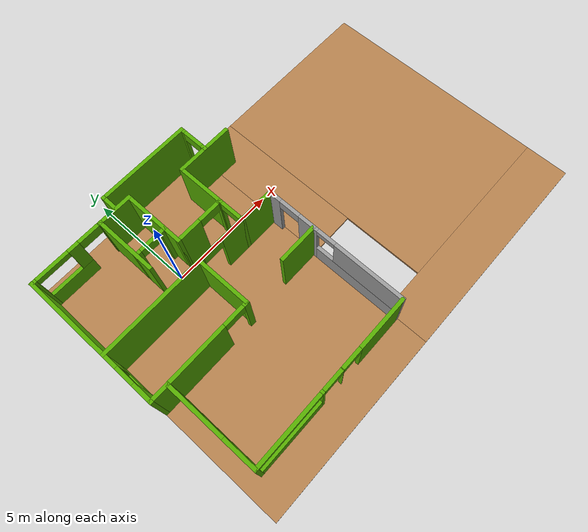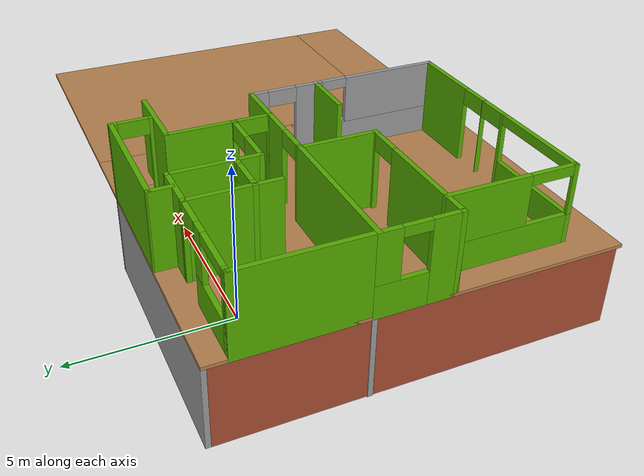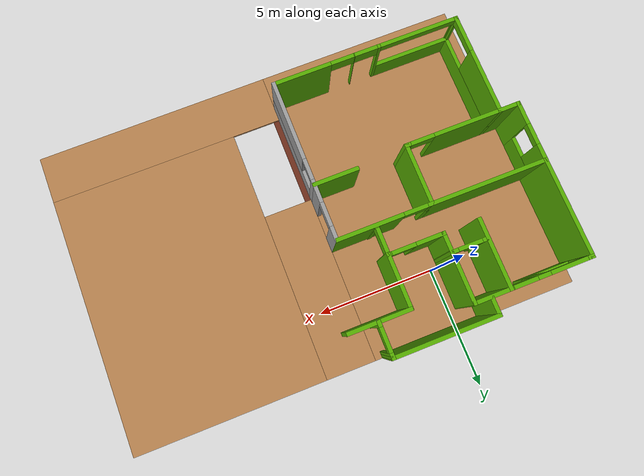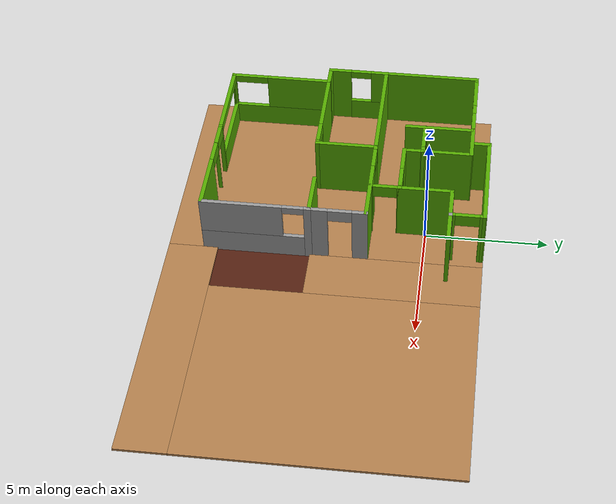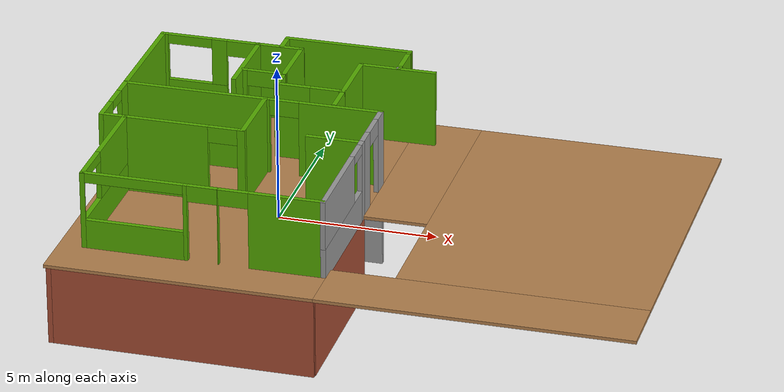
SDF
<sdf version="1.6">
 <model name="2floorHouse">
  <pose>4.58179 -3.588 0 0 -0 0</pose>
  <link name="Floor_7">
   <pose>-0.064 0 2.5 0 -0 0</pose>
   <visual name="Floor_7_Visual_0">
    <pose>-4.67984 0 0.05 0 -0 0</pose>
    <geometry><box><size>8.04273 11.89 0.1</size></box></geometry>
    <material>
     <script><uri>file://media/materials/scripts/gazebo.material</uri><name>Gazebo/Wood</name></script>
     <ambient>0 0 1 1</ambient>
    </material>
   </visual>
   <collision name="Floor_7_Collision_0">
    <geometry><box><size>8.04273 11.89 0.1</size></box></geometry>
    <pose>-4.67984 0 0.05 0 -0 0</pose>
   </collision>
   <visual name="Floor_7_Visual_1">
    <pose>4.02136 -5.01144 0.05 0 -0 0</pose>
    <geometry><box><size>9.35968 1.86713 0.1</size></box></geometry>
    <material>
     <script><uri>file://media/materials/scripts/gazebo.material</uri><name>Gazebo/Wood</name></script>
     <ambient>0 0 1 1</ambient>
    </material>
   </visual>
   <collision name="Floor_7_Collision_1">
    <geometry><box><size>9.35968 1.86713 0.1</size></box></geometry>
    <pose>4.02136 -5.01144 0.05 0 -0 0</pose>
   </collision>
   <visual name="Floor_7_Visual_2">
    <pose>4.98424 0.933567 0.05 0 -0 0</pose>
    <geometry><box><size>7.43393 10.0229 0.1</size></box></geometry>
    <material>
     <script><uri>file://media/materials/scripts/gazebo.material</uri><name>Gazebo/Wood</name></script>
     <ambient>0 0 1 1</ambient>
    </material>
   </visual>
   <collision name="Floor_7_Collision_2">
    <geometry><box><size>7.43393 10.0229 0.1</size></box></geometry>
    <pose>4.98424 0.933567 0.05 0 -0 0</pose>
   </collision>
   <visual name="Floor_7_Visual_3">
    <pose>0.304399 2.68357 0.05 0 -0 0</pose>
    <geometry><box><size>1.92575 6.52287 0.1</size></box></geometry>
    <material>
     <script><uri>file://media/materials/scripts/gazebo.material</uri><name>Gazebo/Wood</name></script>
     <ambient>0 0 1 1</ambient>
    </material>
   </visual>
   <collision name="Floor_7_Collision_3">
    <geometry><box><size>1.92575 6.52287 0.1</size></box></geometry>
    <pose>0.304399 2.68357 0.05 0 -0 0</pose>
   </collision>
  </link>
  <link name="Wall_106">
   <collision name="Wall_106_Collision">
    <geometry><box><size>2.4 0.15 2.5</size></box></geometry>
    <pose>0 0 1.25 0 -0 0</pose>
   </collision>
   <visual name="Wall_106_Visual">
    <pose>0 0 1.25 0 -0 0</pose>
    <geometry><box><size>2.4 0.15 2.5</size></box></geometry>
    <material>
     <script><uri>file://media/materials/scripts/gazebo.material</uri><name>Gazebo/Grey</name></script>
     <ambient>1 1 1 1</ambient>
    </material>
   </visual>
   <pose>-1.1018 4.61 0 0 -0 3.14159</pose>
  </link>
  <link name="Wall_108">
   <collision name="Wall_108_Collision">
    <geometry><box><size>2.1 0.15 2.5</size></box></geometry>
    <pose>0 0 1.25 0 -0 0</pose>
   </collision>
   <visual name="Wall_108_Visual">
    <pose>0 0 1.25 0 -0 0</pose>
    <geometry><box><size>2.1 0.15 2.5</size></box></geometry>
    <material>
     <script><uri>file://media/materials/scripts/gazebo.material</uri><name>Gazebo/Grey</name></script>
     <ambient>1 1 1 1</ambient>
    </material>
   </visual>
   <pose>-2.23979 3.635 0 0 -0 1.5708</pose>
  </link>
  <link name="Wall_112">
   <collision name="Wall_112_Collision">
    <geometry><box><size>4 0.15 2.5</size></box></geometry>
    <pose>0 0 1.25 0 -0 0</pose>
   </collision>
   <visual name="Wall_112_Visual">
    <pose>0 0 1.25 0 -0 0</pose>
    <geometry><box><size>4 0.15 2.5</size></box></geometry>
    <material>
     <script><uri>file://media/materials/scripts/gazebo.material</uri><name>Gazebo/Grey</name></script>
     <ambient>1 1 1 1</ambient>
    </material>
   </visual>
   <pose>-2.98475 5.8698 0 0 0 -3.14149</pose>
  </link>
  <link name="Wall_115">
   <collision name="Wall_115_Collision">
    <geometry><box><size>1.4 0.15 2.5</size></box></geometry>
    <pose>0 0 1.25 0 -0 0</pose>
   </collision>
   <visual name="Wall_115_Visual">
    <pose>0 0 1.25 0 -0 0</pose>
    <geometry><box><size>1.4 0.15 2.5</size></box></geometry>
    <material>
     <script><uri>file://media/materials/scripts/gazebo.material</uri><name>Gazebo/Grey</name></script>
     <ambient>1 1 1 1</ambient>
    </material>
   </visual>
   <pose>-1.0598 5.245 0 0 0 -1.5708</pose>
  </link>
  <link name="Wall_116">
   <collision name="Wall_116_Collision">
    <geometry><box><size>0.15 0.15 2.5</size></box></geometry>
    <pose>0 0 1.25 0 -0 0</pose>
   </collision>
   <visual name="Wall_116_Visual">
    <pose>0 0 1.25 0 -0 0</pose>
    <geometry><box><size>0.15 0.15 2.5</size></box></geometry>
    <material>
     <script><uri>file://media/materials/scripts/gazebo.material</uri><name>Gazebo/Grey</name></script>
     <ambient>1 1 1 1</ambient>
    </material>
   </visual>
   <pose>-1.0598 4.62 0 0 -0 0</pose>
  </link>
  <link name="Wall_292">
   <pose>-4.3959 -4.53994 2.5 0 0 -3.14158</pose>
   <visual name="Wall_292_Visual_0">
    <pose>-2.52118 0 1.25 0 -0 0</pose>
    <geometry><box><size>2.25743 0.15 2.5</size></box></geometry>
    <material>
     <script><uri>file://media/materials/scripts/gazebo.material</uri><name>Gazebo/Grey</name></script>
     <ambient>0.333333 0.666667 0 1</ambient>
    </material>
   </visual>
   <collision name="Wall_292_Collision_0">
    <geometry><box><size>2.25743 0.15 2.5</size></box></geometry>
    <pose>-2.52118 0 1.25 0 -0 0</pose>
   </collision>
   <visual name="Wall_292_Visual_1">
    <pose>-0.479853 0 1.25 0 -0 0</pose>
    <geometry><box><size>0.025221 0.15 2.5</size></box></geometry>
    <material>
     <script><uri>file://media/materials/scripts/gazebo.material</uri><name>Gazebo/Grey</name></script>
     <ambient>0.333333 0.666667 0 1</ambient>
    </material>
   </visual>
   <collision name="Wall_292_Collision_1">
    <geometry><box><size>0.025221 0.15 2.5</size></box></geometry>
    <pose>-0.479853 0 1.25 0 -0 0</pose>
   </collision>
   <visual name="Wall_292_Visual_2">
    <pose>0.492301 0 1.25 0 -0 0</pose>
    <geometry><box><size>0.119086 0.15 2.5</size></box></geometry>
    <material>
     <script><uri>file://media/materials/scripts/gazebo.material</uri><name>Gazebo/Grey</name></script>
     <ambient>0.333333 0.666667 0 1</ambient>
    </material>
   </visual>
   <collision name="Wall_292_Collision_2">
    <geometry><box><size>0.119086 0.15 2.5</size></box></geometry>
    <pose>0.492301 0 1.25 0 -0 0</pose>
   </collision>
   <visual name="Wall_292_Visual_3">
    <pose>2.10087 0 0.5 0 -0 0</pose>
    <geometry><box><size>3.09805 0.15 1</size></box></geometry>
    <material>
     <script><uri>file://media/materials/scripts/gazebo.material</uri><name>Gazebo/Grey</name></script>
     <ambient>0.333333 0.666667 0 1</ambient>
    </material>
   </visual>
   <collision name="Wall_292_Collision_3">
    <geometry><box><size>3.09805 0.15 1</size></box></geometry>
    <pose>2.10087 0 0.5 0 -0 0</pose>
   </collision>
   <visual name="Wall_292_Visual_4">
    <pose>3.60087 0 1.75 0 -0 0</pose>
    <geometry><box><size>0.098047 0.15 1.5</size></box></geometry>
    <material>
     <script><uri>file://media/materials/scripts/gazebo.material</uri><name>Gazebo/Grey</name></script>
     <ambient>0.333333 0.666667 0 1</ambient>
    </material>
   </visual>
   <collision name="Wall_292_Collision_4">
    <geometry><box><size>0.098047 0.15 1.5</size></box></geometry>
    <pose>3.60087 0 1.75 0 -0 0</pose>
   </collision>
   <visual name="Wall_292_Visual_5">
    <pose>-0.942463 0 2.25 0 -0 0</pose>
    <geometry><box><size>0.9 0.15 0.5</size></box></geometry>
    <material>
     <script><uri>file://media/materials/scripts/gazebo.material</uri><name>Gazebo/Grey</name></script>
     <ambient>0.333333 0.666667 0 1</ambient>
    </material>
   </visual>
   <collision name="Wall_292_Collision_5">
    <geometry><box><size>0.9 0.15 0.5</size></box></geometry>
    <pose>-0.942463 0 2.25 0 -0 0</pose>
   </collision>
   <visual name="Wall_292_Visual_6">
    <pose>-0.017242 0 2.25 0 -0 0</pose>
    <geometry><box><size>0.9 0.15 0.5</size></box></geometry>
    <material>
     <script><uri>file://media/materials/scripts/gazebo.material</uri><name>Gazebo/Grey</name></script>
     <ambient>0.333333 0.666667 0 1</ambient>
    </material>
   </visual>
   <collision name="Wall_292_Collision_6">
    <geometry><box><size>0.9 0.15 0.5</size></box></geometry>
    <pose>-0.017242 0 2.25 0 -0 0</pose>
   </collision>
   <visual name="Wall_292_Visual_7">
    <pose>2.05184 0 2.35 0 -0 0</pose>
    <geometry><box><size>3 0.15 0.3</size></box></geometry>
    <material>
     <script><uri>file://media/materials/scripts/gazebo.material</uri><name>Gazebo/Grey</name></script>
     <ambient>0.333333 0.666667 0 1</ambient>
    </material>
   </visual>
   <collision name="Wall_292_Collision_7">
    <geometry><box><size>3 0.15 0.3</size></box></geometry>
    <pose>2.05184 0 2.35 0 -0 0</pose>
   </collision>
  </link>
  <link name="Wall_293">
   <pose>-7.97079 -2.615 2.5 0 -0 1.5708</pose>
   <visual name="Wall_293_Visual_0">
    <pose>-1.97712 0 1.25 0 -0 0</pose>
    <geometry><box><size>0.045764 0.15 2.5</size></box></geometry>
    <material>
     <script><uri>file://media/materials/scripts/gazebo.material</uri><name>Gazebo/Grey</name></script>
     <ambient>0.333333 0.666667 0 1</ambient>
    </material>
   </visual>
   <collision name="Wall_293_Collision_0">
    <geometry><box><size>0.045764 0.15 2.5</size></box></geometry>
    <pose>-1.97712 0 1.25 0 -0 0</pose>
   </collision>
   <visual name="Wall_293_Visual_1">
    <pose>0.022882 0 0.5 0 -0 0</pose>
    <geometry><box><size>3.95424 0.15 1</size></box></geometry>
    <material>
     <script><uri>file://media/materials/scripts/gazebo.material</uri><name>Gazebo/Grey</name></script>
     <ambient>0.333333 0.666667 0 1</ambient>
    </material>
   </visual>
   <collision name="Wall_293_Collision_1">
    <geometry><box><size>3.95424 0.15 1</size></box></geometry>
    <pose>0.022882 0 0.5 0 -0 0</pose>
   </collision>
   <visual name="Wall_293_Visual_2">
    <pose>0.722882 0 1.75 0 -0 0</pose>
    <geometry><box><size>2.55424 0.15 1.5</size></box></geometry>
    <material>
     <script><uri>file://media/materials/scripts/gazebo.material</uri><name>Gazebo/Grey</name></script>
     <ambient>0.333333 0.666667 0 1</ambient>
    </material>
   </visual>
   <collision name="Wall_293_Collision_2">
    <geometry><box><size>2.55424 0.15 1.5</size></box></geometry>
    <pose>0.722882 0 1.75 0 -0 0</pose>
   </collision>
   <visual name="Wall_293_Visual_3">
    <pose>-1.25424 0 2.35 0 -0 0</pose>
    <geometry><box><size>1.4 0.15 0.3</size></box></geometry>
    <material>
     <script><uri>file://media/materials/scripts/gazebo.material</uri><name>Gazebo/Grey</name></script>
     <ambient>0.333333 0.666667 0 1</ambient>
    </material>
   </visual>
   <collision name="Wall_293_Collision_3">
    <geometry><box><size>1.4 0.15 0.3</size></box></geometry>
    <pose>-1.25424 0 2.35 0 -0 0</pose>
   </collision>
  </link>
  <link name="Wall_294">
   <collision name="Wall_294_Collision">
    <geometry><box><size>0.86941 0.15 2.5</size></box></geometry>
    <pose>0 0 1.25 0 -0 0</pose>
   </collision>
   <visual name="Wall_294_Visual">
    <pose>0 0 1.25 0 -0 0</pose>
    <geometry><box><size>0.86941 0.15 2.5</size></box></geometry>
    <material>
     <script><uri>file://media/materials/scripts/gazebo.material</uri><name>Gazebo/Grey</name></script>
     <ambient>0.333333 0.666667 0 1</ambient>
    </material>
   </visual>
   <pose>-8.3305 -0.690004 2.5 0 -0 3.14159</pose>
  </link>
  <link name="Wall_295">
   <pose>-8.69021 0.434996 2.5 0 -0 1.5708</pose>
   <visual name="Wall_295_Visual_0">
    <pose>-0.748437 0 1.25 0 -0 0</pose>
    <geometry><box><size>0.903127 0.15 2.5</size></box></geometry>
    <material>
     <script><uri>file://media/materials/scripts/gazebo.material</uri><name>Gazebo/Grey</name></script>
     <ambient>0.333333 0.666667 0 1</ambient>
    </material>
   </visual>
   <collision name="Wall_295_Collision_0">
    <geometry><box><size>0.903127 0.15 2.5</size></box></geometry>
    <pose>-0.748437 0 1.25 0 -0 0</pose>
   </collision>
   <visual name="Wall_295_Visual_1">
    <pose>0.451563 0 0.5 0 -0 0</pose>
    <geometry><box><size>1.49687 0.15 1</size></box></geometry>
    <material>
     <script><uri>file://media/materials/scripts/gazebo.material</uri><name>Gazebo/Grey</name></script>
     <ambient>0.333333 0.666667 0 1</ambient>
    </material>
   </visual>
   <collision name="Wall_295_Collision_1">
    <geometry><box><size>1.49687 0.15 1</size></box></geometry>
    <pose>0.451563 0 0.5 0 -0 0</pose>
   </collision>
   <visual name="Wall_295_Visual_2">
    <pose>0.851563 0 1.75 0 -0 0</pose>
    <geometry><box><size>0.696873 0.15 1.5</size></box></geometry>
    <material>
     <script><uri>file://media/materials/scripts/gazebo.material</uri><name>Gazebo/Grey</name></script>
     <ambient>0.333333 0.666667 0 1</ambient>
    </material>
   </visual>
   <collision name="Wall_295_Collision_2">
    <geometry><box><size>0.696873 0.15 1.5</size></box></geometry>
    <pose>0.851563 0 1.75 0 -0 0</pose>
   </collision>
   <visual name="Wall_295_Visual_3">
    <pose>0.103127 0 2.35 0 -0 0</pose>
    <geometry><box><size>0.8 0.15 0.3</size></box></geometry>
    <material>
     <script><uri>file://media/materials/scripts/gazebo.material</uri><name>Gazebo/Grey</name></script>
     <ambient>0.333333 0.666667 0 1</ambient>
    </material>
   </visual>
   <collision name="Wall_295_Collision_3">
    <geometry><box><size>0.8 0.15 0.3</size></box></geometry>
    <pose>0.103127 0 2.35 0 -0 0</pose>
   </collision>
  </link>
  <link name="Wall_296">
   <collision name="Wall_296_Collision">
    <geometry><box><size>4.5 0.15 2.5</size></box></geometry>
    <pose>0 0 1.25 0 -0 0</pose>
   </collision>
   <visual name="Wall_296_Visual">
    <pose>0 0 1.25 0 -0 0</pose>
    <geometry><box><size>4.5 0.15 2.5</size></box></geometry>
    <material>
     <script><uri>file://media/materials/scripts/gazebo.material</uri><name>Gazebo/Grey</name></script>
     <ambient>0.333333 0.666667 0 1</ambient>
    </material>
   </visual>
   <pose>-6.5152 1.56 2.5 0 -0 0</pose>
  </link>
  <link name="Wall_297">
   <collision name="Wall_297_Collision">
    <geometry><box><size>2.4 0.15 2.5</size></box></geometry>
    <pose>0 0 1.25 0 -0 0</pose>
   </collision>
   <visual name="Wall_297_Visual">
    <pose>0 0 1.25 0 -0 0</pose>
    <geometry><box><size>2.4 0.15 2.5</size></box></geometry>
    <material>
     <script><uri>file://media/materials/scripts/gazebo.material</uri><name>Gazebo/Grey</name></script>
     <ambient>0.333333 0.666667 0 1</ambient>
    </material>
   </visual>
   <pose>-4.34021 0.434996 2.5 0 0 -1.5708</pose>
  </link>
  <link name="Wall_298">
   <pose>-6.1555 -0.690004 2.5 0 -0 3.14159</pose>
   <visual name="Wall_298_Visual_0">
    <pose>-1.77022 0 1.25 0 -0 0</pose>
    <geometry><box><size>0.240159 0.15 2.5</size></box></geometry>
    <material>
     <script><uri>file://media/materials/scripts/gazebo.material</uri><name>Gazebo/Grey</name></script>
     <ambient>0.333333 0.666667 0 1</ambient>
    </material>
   </visual>
   <collision name="Wall_298_Collision_0">
    <geometry><box><size>0.240159 0.15 2.5</size></box></geometry>
    <pose>-1.77022 0 1.25 0 -0 0</pose>
   </collision>
   <visual name="Wall_298_Visual_1">
    <pose>0.570079 0 1.25 0 -0 0</pose>
    <geometry><box><size>2.64043 0.15 2.5</size></box></geometry>
    <material>
     <script><uri>file://media/materials/scripts/gazebo.material</uri><name>Gazebo/Grey</name></script>
     <ambient>0.333333 0.666667 0 1</ambient>
    </material>
   </visual>
   <collision name="Wall_298_Collision_1">
    <geometry><box><size>2.64043 0.15 2.5</size></box></geometry>
    <pose>0.570079 0 1.25 0 -0 0</pose>
   </collision>
   <visual name="Wall_298_Visual_2">
    <pose>-1.20014 0 2.25 0 -0 0</pose>
    <geometry><box><size>0.9 0.15 0.5</size></box></geometry>
    <material>
     <script><uri>file://media/materials/scripts/gazebo.material</uri><name>Gazebo/Grey</name></script>
     <ambient>0.333333 0.666667 0 1</ambient>
    </material>
   </visual>
   <collision name="Wall_298_Collision_2">
    <geometry><box><size>0.9 0.15 0.5</size></box></geometry>
    <pose>-1.20014 0 2.25 0 -0 0</pose>
   </collision>
  </link>
  <link name="Wall_299">
   <pose>-2.565 1.56 2.5 0 -0 0</pose>
   <visual name="Wall_299_Visual_0">
    <pose>-1.73627 0 1.25 0 -0 0</pose>
    <geometry><box><size>0.227865 0.15 2.5</size></box></geometry>
    <material>
     <script><uri>file://media/materials/scripts/gazebo.material</uri><name>Gazebo/Grey</name></script>
     <ambient>0.333333 0.666667 0 1</ambient>
    </material>
   </visual>
   <collision name="Wall_299_Collision_0">
    <geometry><box><size>0.227865 0.15 2.5</size></box></geometry>
    <pose>-1.73627 0 1.25 0 -0 0</pose>
   </collision>
   <visual name="Wall_299_Visual_1">
    <pose>0.563933 0 1.25 0 -0 0</pose>
    <geometry><box><size>2.57254 0.15 2.5</size></box></geometry>
    <material>
     <script><uri>file://media/materials/scripts/gazebo.material</uri><name>Gazebo/Grey</name></script>
     <ambient>0.333333 0.666667 0 1</ambient>
    </material>
   </visual>
   <collision name="Wall_299_Collision_1">
    <geometry><box><size>2.57254 0.15 2.5</size></box></geometry>
    <pose>0.563933 0 1.25 0 -0 0</pose>
   </collision>
   <visual name="Wall_299_Visual_2">
    <pose>-1.17234 0 2.25 0 -0 0</pose>
    <geometry><box><size>0.9 0.15 0.5</size></box></geometry>
    <material>
     <script><uri>file://media/materials/scripts/gazebo.material</uri><name>Gazebo/Grey</name></script>
     <ambient>0.333333 0.666667 0 1</ambient>
    </material>
   </visual>
   <collision name="Wall_299_Collision_2">
    <geometry><box><size>0.9 0.15 0.5</size></box></geometry>
    <pose>-1.17234 0 2.25 0 -0 0</pose>
   </collision>
  </link>
  <link name="Wall_300">
   <pose>-0.789795 0.509996 2.5 0 0 -1.5708</pose>
   <visual name="Wall_300_Visual_0">
    <pose>-0.8265 0 1.25 0 -0 0</pose>
    <geometry><box><size>0.597 0.15 2.5</size></box></geometry>
    <material>
     <script><uri>file://media/materials/scripts/gazebo.material</uri><name>Gazebo/Grey</name></script>
     <ambient>1 1 1 1</ambient>
    </material>
   </visual>
   <collision name="Wall_300_Collision_0">
    <geometry><box><size>0.597 0.15 2.5</size></box></geometry>
    <pose>-0.8265 0 1.25 0 -0 0</pose>
   </collision>
   <visual name="Wall_300_Visual_1">
    <pose>0.7485 0 1.25 0 -0 0</pose>
    <geometry><box><size>0.753 0.15 2.5</size></box></geometry>
    <material>
     <script><uri>file://media/materials/scripts/gazebo.material</uri><name>Gazebo/Grey</name></script>
     <ambient>1 1 1 1</ambient>
    </material>
   </visual>
   <collision name="Wall_300_Collision_1">
    <geometry><box><size>0.753 0.15 2.5</size></box></geometry>
    <pose>0.7485 0 1.25 0 -0 0</pose>
   </collision>
   <visual name="Wall_300_Visual_2">
    <pose>-0.078 0 2.25 0 -0 0</pose>
    <geometry><box><size>0.9 0.15 0.5</size></box></geometry>
    <material>
     <script><uri>file://media/materials/scripts/gazebo.material</uri><name>Gazebo/Grey</name></script>
     <ambient>1 1 1 1</ambient>
    </material>
   </visual>
   <collision name="Wall_300_Collision_2">
    <geometry><box><size>0.9 0.15 0.5</size></box></geometry>
    <pose>-0.078 0 2.25 0 -0 0</pose>
   </collision>
  </link>
  <link name="Wall_301">
   <collision name="Wall_301_Collision">
    <geometry><box><size>1.75 0.15 2.5</size></box></geometry>
    <pose>0 0 1.25 0 -0 0</pose>
   </collision>
   <visual name="Wall_301_Visual">
    <pose>0 0 1.25 0 -0 0</pose>
    <geometry><box><size>1.75 0.15 2.5</size></box></geometry>
    <material>
     <script><uri>file://media/materials/scripts/gazebo.material</uri><name>Gazebo/Grey</name></script>
     <ambient>0.333333 0.666667 0 1</ambient>
    </material>
   </visual>
   <pose>-1.5898 -0.540004 2.5 0 -0 3.14159</pose>
  </link>
  <link name="Wall_302">
   <pose>-0.789795 -2.54 2.5 0 0 -1.5708</pose>
   <visual name="Wall_302_Visual_0">
    <pose>-1.93765 0 1.25 0 -0 0</pose>
    <geometry><box><size>0.274706 0.15 2.5</size></box></geometry>
    <material>
     <script><uri>file://media/materials/scripts/gazebo.material</uri><name>Gazebo/Grey</name></script>
     <ambient>1 1 1 1</ambient>
    </material>
   </visual>
   <collision name="Wall_302_Collision_0">
    <geometry><box><size>0.274706 0.15 2.5</size></box></geometry>
    <pose>-1.93765 0 1.25 0 -0 0</pose>
   </collision>
   <visual name="Wall_302_Visual_1">
    <pose>0.137353 0 0.5 0 -0 0</pose>
    <geometry><box><size>3.87529 0.15 1</size></box></geometry>
    <material>
     <script><uri>file://media/materials/scripts/gazebo.material</uri><name>Gazebo/Grey</name></script>
     <ambient>1 1 1 1</ambient>
    </material>
   </visual>
   <collision name="Wall_302_Collision_1">
    <geometry><box><size>3.87529 0.15 1</size></box></geometry>
    <pose>0.137353 0 0.5 0 -0 0</pose>
   </collision>
   <visual name="Wall_302_Visual_2">
    <pose>0.537353 0 1.75 0 -0 0</pose>
    <geometry><box><size>3.07529 0.15 1.5</size></box></geometry>
    <material>
     <script><uri>file://media/materials/scripts/gazebo.material</uri><name>Gazebo/Grey</name></script>
     <ambient>1 1 1 1</ambient>
    </material>
   </visual>
   <collision name="Wall_302_Collision_2">
    <geometry><box><size>3.07529 0.15 1.5</size></box></geometry>
    <pose>0.537353 0 1.75 0 -0 0</pose>
   </collision>
   <visual name="Wall_302_Visual_3">
    <pose>-1.40029 0 2.35 0 -0 0</pose>
    <geometry><box><size>0.8 0.15 0.3</size></box></geometry>
    <material>
     <script><uri>file://media/materials/scripts/gazebo.material</uri><name>Gazebo/Grey</name></script>
     <ambient>1 1 1 1</ambient>
    </material>
   </visual>
   <collision name="Wall_302_Collision_3">
    <geometry><box><size>0.8 0.15 0.3</size></box></geometry>
    <pose>-1.40029 0 2.35 0 -0 0</pose>
   </collision>
  </link>
  <link name="Wall_303">
   <collision name="Wall_303_Collision">
    <geometry><box><size>3.8 0.15 2.5</size></box></geometry>
    <pose>0 0 1.25 0 -0 0</pose>
   </collision>
   <visual name="Wall_303_Visual">
    <pose>0 0 1.25 0 -0 0</pose>
    <geometry><box><size>3.8 0.15 2.5</size></box></geometry>
    <material>
     <script><uri>file://media/materials/scripts/gazebo.material</uri><name>Gazebo/Grey</name></script>
     <ambient>0.333333 0.666667 0 1</ambient>
    </material>
   </visual>
   <pose>-8.69021 3.385 2.5 0 -0 1.5708</pose>
  </link>
  <link name="Wall_304">
   <pose>-7.16521 5.21 2.5 0 -0 0</pose>
   <visual name="Wall_304_Visual_0">
    <pose>-1.47576 0 1.25 0 -0 0</pose>
    <geometry><box><size>0.248475 0.15 2.5</size></box></geometry>
    <material>
     <script><uri>file://media/materials/scripts/gazebo.material</uri><name>Gazebo/Grey</name></script>
     <ambient>0.333333 0.666667 0 1</ambient>
    </material>
   </visual>
   <collision name="Wall_304_Collision_0">
    <geometry><box><size>0.248475 0.15 2.5</size></box></geometry>
    <pose>-1.47576 0 1.25 0 -0 0</pose>
   </collision>
   <visual name="Wall_304_Visual_1">
    <pose>1.51114 0 1.25 0 -0 0</pose>
    <geometry><box><size>0.177722 0.15 2.5</size></box></geometry>
    <material>
     <script><uri>file://media/materials/scripts/gazebo.material</uri><name>Gazebo/Grey</name></script>
     <ambient>0.333333 0.666667 0 1</ambient>
    </material>
   </visual>
   <collision name="Wall_304_Collision_1">
    <geometry><box><size>0.177722 0.15 2.5</size></box></geometry>
    <pose>1.51114 0 1.25 0 -0 0</pose>
   </collision>
   <visual name="Wall_304_Visual_2">
    <pose>-0.414623 0 0.5 0 -0 0</pose>
    <geometry><box><size>1.8738 0.15 1</size></box></geometry>
    <material>
     <script><uri>file://media/materials/scripts/gazebo.material</uri><name>Gazebo/Grey</name></script>
     <ambient>0.333333 0.666667 0 1</ambient>
    </material>
   </visual>
   <collision name="Wall_304_Collision_2">
    <geometry><box><size>1.8738 0.15 1</size></box></geometry>
    <pose>-0.414623 0 0.5 0 -0 0</pose>
   </collision>
   <visual name="Wall_304_Visual_3">
    <pose>0.285377 0 1.75 0 -0 0</pose>
    <geometry><box><size>0.473803 0.15 1.5</size></box></geometry>
    <material>
     <script><uri>file://media/materials/scripts/gazebo.material</uri><name>Gazebo/Grey</name></script>
     <ambient>0.333333 0.666667 0 1</ambient>
    </material>
   </visual>
   <collision name="Wall_304_Collision_3">
    <geometry><box><size>0.473803 0.15 1.5</size></box></geometry>
    <pose>0.285377 0 1.75 0 -0 0</pose>
   </collision>
   <visual name="Wall_304_Visual_4">
    <pose>0.972278 0 2.25 0 -0 0</pose>
    <geometry><box><size>0.9 0.15 0.5</size></box></geometry>
    <material>
     <script><uri>file://media/materials/scripts/gazebo.material</uri><name>Gazebo/Grey</name></script>
     <ambient>0.333333 0.666667 0 1</ambient>
    </material>
   </visual>
   <collision name="Wall_304_Collision_4">
    <geometry><box><size>0.9 0.15 0.5</size></box></geometry>
    <pose>0.972278 0 2.25 0 -0 0</pose>
   </collision>
   <visual name="Wall_304_Visual_5">
    <pose>-0.651525 0 2.35 0 -0 0</pose>
    <geometry><box><size>1.4 0.15 0.3</size></box></geometry>
    <material>
     <script><uri>file://media/materials/scripts/gazebo.material</uri><name>Gazebo/Grey</name></script>
     <ambient>0.333333 0.666667 0 1</ambient>
    </material>
   </visual>
   <collision name="Wall_304_Collision_5">
    <geometry><box><size>1.4 0.15 0.3</size></box></geometry>
    <pose>-0.651525 0 2.35 0 -0 0</pose>
   </collision>
  </link>
  <link name="Wall_305">
   <collision name="Wall_305_Collision">
    <geometry><box><size>2.7 0.15 2.5</size></box></geometry>
    <pose>0 0 1.25 0 -0 0</pose>
   </collision>
   <visual name="Wall_305_Visual">
    <pose>0 0 1.25 0 -0 0</pose>
    <geometry><box><size>2.7 0.15 2.5</size></box></geometry>
    <material>
     <script><uri>file://media/materials/scripts/gazebo.material</uri><name>Gazebo/Grey</name></script>
     <ambient>0.333333 0.666667 0 1</ambient>
    </material>
   </visual>
   <pose>-5.6402 3.935 2.5 0 0 -1.5708</pose>
  </link>
  <link name="Wall_306">
   <collision name="Wall_306_Collision">
    <geometry><box><size>1.5 0.15 2.5</size></box></geometry>
    <pose>0 0 1.25 0 -0 0</pose>
   </collision>
   <visual name="Wall_306_Visual">
    <pose>0 0 1.25 0 -0 0</pose>
    <geometry><box><size>1.5 0.15 2.5</size></box></geometry>
    <material>
     <script><uri>file://media/materials/scripts/gazebo.material</uri><name>Gazebo/Grey</name></script>
     <ambient>0.333333 0.666667 0 1</ambient>
    </material>
   </visual>
   <pose>-4.96521 5.21 2.5 0 -0 0</pose>
  </link>
  <link name="Wall_307">
   <collision name="Wall_307_Collision">
    <geometry><box><size>2 0.15 2.5</size></box></geometry>
    <pose>0 0 1.25 0 -0 0</pose>
   </collision>
   <visual name="Wall_307_Visual">
    <pose>0 0 1.25 0 -0 0</pose>
    <geometry><box><size>2 0.15 2.5</size></box></geometry>
    <material>
     <script><uri>file://media/materials/scripts/gazebo.material</uri><name>Gazebo/Grey</name></script>
     <ambient>0.333333 0.666667 0 1</ambient>
    </material>
   </visual>
   <pose>-4.29 4.285 2.5 0 0 -1.57058</pose>
  </link>
  <link name="Wall_308">
   <pose>-4.965 3.36 2.5 0 -0 3.14159</pose>
   <visual name="Wall_308_Visual_0">
    <pose>-0.593035 0 1.25 0 -0 0</pose>
    <geometry><box><size>0.314339 0.15 2.5</size></box></geometry>
    <material>
     <script><uri>file://media/materials/scripts/gazebo.material</uri><name>Gazebo/Grey</name></script>
     <ambient>0.333333 0.666667 0 1</ambient>
    </material>
   </visual>
   <collision name="Wall_308_Collision_0">
    <geometry><box><size>0.314339 0.15 2.5</size></box></geometry>
    <pose>-0.593035 0 1.25 0 -0 0</pose>
   </collision>
   <visual name="Wall_308_Visual_1">
    <pose>0.607169 0 1.25 0 -0 0</pose>
    <geometry><box><size>0.286071 0.15 2.5</size></box></geometry>
    <material>
     <script><uri>file://media/materials/scripts/gazebo.material</uri><name>Gazebo/Grey</name></script>
     <ambient>0.333333 0.666667 0 1</ambient>
    </material>
   </visual>
   <collision name="Wall_308_Collision_1">
    <geometry><box><size>0.286071 0.15 2.5</size></box></geometry>
    <pose>0.607169 0 1.25 0 -0 0</pose>
   </collision>
   <visual name="Wall_308_Visual_2">
    <pose>0.014134 0 2.25 0 -0 0</pose>
    <geometry><box><size>0.9 0.15 0.5</size></box></geometry>
    <material>
     <script><uri>file://media/materials/scripts/gazebo.material</uri><name>Gazebo/Grey</name></script>
     <ambient>0.333333 0.666667 0 1</ambient>
    </material>
   </visual>
   <collision name="Wall_308_Collision_2">
    <geometry><box><size>0.9 0.15 0.5</size></box></geometry>
    <pose>0.014134 0 2.25 0 -0 0</pose>
   </collision>
  </link>
  <link name="Wall_309">
   <collision name="Wall_309_Collision">
    <geometry><box><size>0.85 0.15 2.5</size></box></geometry>
    <pose>0 0 1.25 0 -0 0</pose>
   </collision>
   <visual name="Wall_309_Visual">
    <pose>0 0 1.25 0 -0 0</pose>
    <geometry><box><size>0.85 0.15 2.5</size></box></geometry>
    <material>
     <script><uri>file://media/materials/scripts/gazebo.material</uri><name>Gazebo/Grey</name></script>
     <ambient>0.333333 0.666667 0 1</ambient>
    </material>
   </visual>
   <pose>-4.28979 3.01 2.5 0 0 -1.5708</pose>
  </link>
  <link name="Wall_310">
   <pose>-3.2648 2.66 2.5 0 -0 0</pose>
   <visual name="Wall_310_Visual_0">
    <pose>-0.547035 0 1.25 0 -0 0</pose>
    <geometry><box><size>1.10593 0.15 2.5</size></box></geometry>
    <material>
     <script><uri>file://media/materials/scripts/gazebo.material</uri><name>Gazebo/Grey</name></script>
     <ambient>0.333333 0.666667 0 1</ambient>
    </material>
   </visual>
   <collision name="Wall_310_Collision_0">
    <geometry><box><size>1.10593 0.15 2.5</size></box></geometry>
    <pose>-0.547035 0 1.25 0 -0 0</pose>
   </collision>
   <visual name="Wall_310_Visual_1">
    <pose>1.00297 0 1.25 0 -0 0</pose>
    <geometry><box><size>0.194069 0.15 2.5</size></box></geometry>
    <material>
     <script><uri>file://media/materials/scripts/gazebo.material</uri><name>Gazebo/Grey</name></script>
     <ambient>0.333333 0.666667 0 1</ambient>
    </material>
   </visual>
   <collision name="Wall_310_Collision_1">
    <geometry><box><size>0.194069 0.15 2.5</size></box></geometry>
    <pose>1.00297 0 1.25 0 -0 0</pose>
   </collision>
   <visual name="Wall_310_Visual_2">
    <pose>0.455931 0 2.25 0 -0 0</pose>
    <geometry><box><size>0.9 0.15 0.5</size></box></geometry>
    <material>
     <script><uri>file://media/materials/scripts/gazebo.material</uri><name>Gazebo/Grey</name></script>
     <ambient>0.333333 0.666667 0 1</ambient>
    </material>
   </visual>
   <collision name="Wall_310_Collision_2">
    <geometry><box><size>0.9 0.15 0.5</size></box></geometry>
    <pose>0.455931 0 2.25 0 -0 0</pose>
   </collision>
  </link>
  <link name="Wall_311">
   <pose>-2.23979 2.11 2.5 0 0 -1.5708</pose>
   <visual name="Wall_311_Visual_0">
    <pose>-0.539157 0 1.25 0 -0 0</pose>
    <geometry><box><size>0.171686 0.15 2.5</size></box></geometry>
    <material>
     <script><uri>file://media/materials/scripts/gazebo.material</uri><name>Gazebo/Grey</name></script>
     <ambient>0.333333 0.666667 0 1</ambient>
    </material>
   </visual>
   <collision name="Wall_311_Collision_0">
    <geometry><box><size>0.171686 0.15 2.5</size></box></geometry>
    <pose>-0.539157 0 1.25 0 -0 0</pose>
   </collision>
   <visual name="Wall_311_Visual_1">
    <pose>0.535843 0 1.25 0 -0 0</pose>
    <geometry><box><size>0.178314 0.15 2.5</size></box></geometry>
    <material>
     <script><uri>file://media/materials/scripts/gazebo.material</uri><name>Gazebo/Grey</name></script>
     <ambient>0.333333 0.666667 0 1</ambient>
    </material>
   </visual>
   <collision name="Wall_311_Collision_1">
    <geometry><box><size>0.178314 0.15 2.5</size></box></geometry>
    <pose>0.535843 0 1.25 0 -0 0</pose>
   </collision>
   <visual name="Wall_311_Visual_2">
    <pose>-0.003314 0 2.25 0 -0 0</pose>
    <geometry><box><size>0.9 0.15 0.5</size></box></geometry>
    <material>
     <script><uri>file://media/materials/scripts/gazebo.material</uri><name>Gazebo/Grey</name></script>
     <ambient>0.333333 0.666667 0 1</ambient>
    </material>
   </visual>
   <collision name="Wall_311_Collision_2">
    <geometry><box><size>0.9 0.15 0.5</size></box></geometry>
    <pose>-0.003314 0 2.25 0 -0 0</pose>
   </collision>
  </link>
  <link name="Wall_316">
   <collision name="Wall_316_Collision">
    <geometry><box><size>2.4 0.15 2.5</size></box></geometry>
    <pose>0 0 1.25 0 -0 0</pose>
   </collision>
   <visual name="Wall_316_Visual">
    <pose>0 0 1.25 0 -0 0</pose>
    <geometry><box><size>2.4 0.15 2.5</size></box></geometry>
    <material>
     <script><uri>file://media/materials/scripts/gazebo.material</uri><name>Gazebo/Grey</name></script>
     <ambient>0.333333 0.666667 0 1</ambient>
    </material>
   </visual>
   <pose>-1.1018 4.61 2.5 0 -0 3.14159</pose>
  </link>
  <link name="Wall_317">
   <collision name="Wall_317_Collision">
    <geometry><box><size>2.1 0.15 2.5</size></box></geometry>
    <pose>0 0 1.25 0 -0 0</pose>
   </collision>
   <visual name="Wall_317_Visual">
    <pose>0 0 1.25 0 -0 0</pose>
    <geometry><box><size>2.1 0.15 2.5</size></box></geometry>
    <material>
     <script><uri>file://media/materials/scripts/gazebo.material</uri><name>Gazebo/Grey</name></script>
     <ambient>0.333333 0.666667 0 1</ambient>
    </material>
   </visual>
   <pose>-2.23979 3.635 2.5 0 -0 1.5708</pose>
  </link>
  <link name="Wall_318">
   <collision name="Wall_318_Collision">
    <geometry><box><size>3.99991 0.15 2.5</size></box></geometry>
    <pose>0 0 1.25 0 -0 0</pose>
   </collision>
   <visual name="Wall_318_Visual">
    <pose>0 0 1.25 0 -0 0</pose>
    <geometry><box><size>3.99991 0.15 2.5</size></box></geometry>
    <material>
     <script><uri>file://media/materials/scripts/gazebo.material</uri><name>Gazebo/Grey</name></script>
     <ambient>0.333333 0.666667 0 1</ambient>
    </material>
   </visual>
   <pose>-2.98475 5.8698 2.5 0 0 -3.14149</pose>
  </link>
  <link name="Wall_319">
   <collision name="Wall_319_Collision">
    <geometry><box><size>0.75 0.15 2.5</size></box></geometry>
    <pose>0 0 1.25 0 -0 0</pose>
   </collision>
   <visual name="Wall_319_Visual">
    <pose>0 0 1.25 0 -0 0</pose>
    <geometry><box><size>0.75 0.15 2.5</size></box></geometry>
    <material>
     <script><uri>file://media/materials/scripts/gazebo.material</uri><name>Gazebo/Grey</name></script>
     <ambient>0.333333 0.666667 0 1</ambient>
    </material>
   </visual>
   <pose>-4.90971 5.56961 2.5 0 0 -1.5708</pose>
  </link>
  <link name="Wall_320">
   <pose>-1.0598 5.245 2.5 0 0 -1.5708</pose>
   <visual name="Wall_320_Visual_0">
    <pose>-0.572184 0 1.25 0 -0 0</pose>
    <geometry><box><size>0.255633 0.15 2.5</size></box></geometry>
    <material>
     <script><uri>file://media/materials/scripts/gazebo.material</uri><name>Gazebo/Grey</name></script>
     <ambient>0.333333 0.666667 0 1</ambient>
    </material>
   </visual>
   <collision name="Wall_320_Collision_0">
    <geometry><box><size>0.255633 0.15 2.5</size></box></geometry>
    <pose>-0.572184 0 1.25 0 -0 0</pose>
   </collision>
   <visual name="Wall_320_Visual_1">
    <pose>0.577816 0 1.25 0 -0 0</pose>
    <geometry><box><size>0.244367 0.15 2.5</size></box></geometry>
    <material>
     <script><uri>file://media/materials/scripts/gazebo.material</uri><name>Gazebo/Grey</name></script>
     <ambient>0.333333 0.666667 0 1</ambient>
    </material>
   </visual>
   <collision name="Wall_320_Collision_1">
    <geometry><box><size>0.244367 0.15 2.5</size></box></geometry>
    <pose>0.577816 0 1.25 0 -0 0</pose>
   </collision>
   <visual name="Wall_320_Visual_2">
    <pose>0.005633 0 2.25 0 -0 0</pose>
    <geometry><box><size>0.9 0.15 0.5</size></box></geometry>
    <material>
     <script><uri>file://media/materials/scripts/gazebo.material</uri><name>Gazebo/Grey</name></script>
     <ambient>0.333333 0.666667 0 1</ambient>
    </material>
   </visual>
   <collision name="Wall_320_Collision_2">
    <geometry><box><size>0.9 0.15 0.5</size></box></geometry>
    <pose>0.005633 0 2.25 0 -0 0</pose>
   </collision>
  </link>
  <link name="Wall_321">
   <collision name="Wall_321_Collision">
    <geometry><box><size>0.15 0.15 2.5</size></box></geometry>
    <pose>0 0 1.25 0 -0 0</pose>
   </collision>
   <visual name="Wall_321_Visual">
    <pose>0 0 1.25 0 -0 0</pose>
    <geometry><box><size>0.15 0.15 2.5</size></box></geometry>
    <material>
     <script><uri>file://media/materials/scripts/gazebo.material</uri><name>Gazebo/Grey</name></script>
     <ambient>1 1 1 1</ambient>
    </material>
   </visual>
   <pose>-1.0598 4.62 2.5 0 -0 0</pose>
  </link>
  <link name="Wall_351">
   <collision name="Wall_351_Collision">
    <geometry><box><size>7.75 0.15 2.5</size></box></geometry>
    <pose>0 0 1.25 0 -0 0</pose>
   </collision>
   <visual name="Wall_351_Visual">
    <pose>0 0 1.25 0 -0 0</pose>
    <geometry><box><size>7.75 0.15 2.5</size></box></geometry>
    <material>
     <script><uri>file://media/materials/scripts/gazebo.material</uri><name>Gazebo/Grey</name></script>
     <ambient>1 1 1 1</ambient>
    </material>
   </visual>
   <pose>-4.8598 5.87 0 0 -0 3.14159</pose>
  </link>
  <link name="Wall_352">
   <collision name="Wall_352_Collision">
    <geometry><box><size>11.75 0.15 2.5</size></box></geometry>
    <pose>0 0 1.25 0 -0 0</pose>
   </collision>
   <visual name="Wall_352_Visual">
    <pose>0 0 1.25 0 -0 0</pose>
    <geometry><box><size>11.75 0.15 2.5</size></box></geometry>
    <material>
     <script><uri>file://media/materials/scripts/gazebo.material</uri><name>Gazebo/Bricks</name></script>
     <ambient>1 1 1 1</ambient>
    </material>
   </visual>
   <pose>-8.6598 0.069996 0 0 0 -1.5708</pose>
  </link>
  <link name="Wall_357">
   <collision name="Wall_357_Collision">
    <geometry><box><size>8 0.15 2.5</size></box></geometry>
    <pose>0 0 1.25 0 -0 0</pose>
   </collision>
   <visual name="Wall_357_Visual">
    <pose>0 0 1.25 0 -0 0</pose>
    <geometry><box><size>8 0.15 2.5</size></box></geometry>
    <material>
     <script><uri>file://media/materials/scripts/gazebo.material</uri><name>Gazebo/Bricks</name></script>
     <ambient>1 1 1 1</ambient>
    </material>
   </visual>
   <pose>-4.7348 -5.73 0 0 -0 0</pose>
  </link>
  <link name="Wall_43">
   <collision name="Wall_43_Collision">
    <geometry><box><size>0.873056 0.15 2.5</size></box></geometry>
    <pose>0 0 1.25 0 -0 0</pose>
   </collision>
   <visual name="Wall_43_Visual">
    <pose>0 0 1.25 0 -0 0</pose>
    <geometry><box><size>0.873056 0.15 2.5</size></box></geometry>
    <material>
     <script><uri>file://media/materials/scripts/gazebo.material</uri><name>Gazebo/Grey</name></script>
     <ambient>1 1 1 1</ambient>
    </material>
   </visual>
   <pose>-8.20927 -0.690004 0 0 -0 3.14159</pose>
  </link>
  <link name="Wall_48">
   <collision name="Wall_48_Collision">
    <geometry><box><size>4.5 0.15 2.5</size></box></geometry>
    <pose>0 0 1.25 0 -0 0</pose>
   </collision>
   <visual name="Wall_48_Visual">
    <pose>0 0 1.25 0 -0 0</pose>
    <geometry><box><size>4.5 0.15 2.5</size></box></geometry>
    <material>
     <script><uri>file://media/materials/scripts/gazebo.material</uri><name>Gazebo/Grey</name></script>
     <ambient>1 1 1 1</ambient>
    </material>
   </visual>
   <pose>-6.5152 1.56 0 0 -0 0</pose>
  </link>
  <link name="Wall_50">
   <collision name="Wall_50_Collision">
    <geometry><box><size>2.4 0.15 2.5</size></box></geometry>
    <pose>0 0 1.25 0 -0 0</pose>
   </collision>
   <visual name="Wall_50_Visual">
    <pose>0 0 1.25 0 -0 0</pose>
    <geometry><box><size>2.4 0.15 2.5</size></box></geometry>
    <material>
     <script><uri>file://media/materials/scripts/gazebo.material</uri><name>Gazebo/Grey</name></script>
     <ambient>1 1 1 1</ambient>
    </material>
   </visual>
   <pose>-4.34021 0.434996 0 0 0 -1.5708</pose>
  </link>
  <link name="Wall_52">
   <collision name="Wall_52_Collision">
    <geometry><box><size>3.65753 0.15 2.5</size></box></geometry>
    <pose>0 0 1.25 0 -0 0</pose>
   </collision>
   <visual name="Wall_52_Visual">
    <pose>0 0 1.25 0 -0 0</pose>
    <geometry><box><size>3.65753 0.15 2.5</size></box></geometry>
    <material>
     <script><uri>file://media/materials/scripts/gazebo.material</uri><name>Gazebo/Grey</name></script>
     <ambient>1 1 1 1</ambient>
    </material>
   </visual>
   <pose>-6.09397 -0.690004 0 0 -0 3.14159</pose>
  </link>
  <link name="Wall_55">
   <collision name="Wall_55_Collision">
    <geometry><box><size>3.7 0.15 2.5</size></box></geometry>
    <pose>0 0 1.25 0 -0 0</pose>
   </collision>
   <visual name="Wall_55_Visual">
    <pose>0 0 1.25 0 -0 0</pose>
    <geometry><box><size>3.7 0.15 2.5</size></box></geometry>
    <material>
     <script><uri>file://media/materials/scripts/gazebo.material</uri><name>Gazebo/Grey</name></script>
     <ambient>1 1 1 1</ambient>
    </material>
   </visual>
   <pose>-2.565 1.56 0 0 -0 0</pose>
  </link>
  <link name="Wall_66">
   <collision name="Wall_66_Collision">
    <geometry><box><size>5.25 0.15 2.5</size></box></geometry>
    <pose>0 0 1.25 0 -0 0</pose>
   </collision>
   <visual name="Wall_66_Visual">
    <pose>0 0 1.25 0 -0 0</pose>
    <geometry><box><size>5.25 0.15 2.5</size></box></geometry>
    <material>
     <script><uri>file://media/materials/scripts/gazebo.material</uri><name>Gazebo/Bricks</name></script>
     <ambient>1 1 1 1</ambient>
    </material>
   </visual>
   <pose>-0.789795 -3.09 0 0 0 -1.5708</pose>
  </link>
  <link name="Wall_85">
   <collision name="Wall_85_Collision">
    <geometry><box><size>1.25 0.15 2.5</size></box></geometry>
    <pose>0 0 1.25 0 -0 0</pose>
   </collision>
   <visual name="Wall_85_Visual">
    <pose>0 0 1.25 0 -0 0</pose>
    <geometry><box><size>1.25 0.15 2.5</size></box></geometry>
    <material>
     <script><uri>file://media/materials/scripts/gazebo.material</uri><name>Gazebo/Grey</name></script>
     <ambient>1 1 1 1</ambient>
    </material>
   </visual>
   <pose>-2.23979 2.11 0 0 0 -1.5708</pose>
  </link>
  <static>1</static>
 </model>
</sdf>
